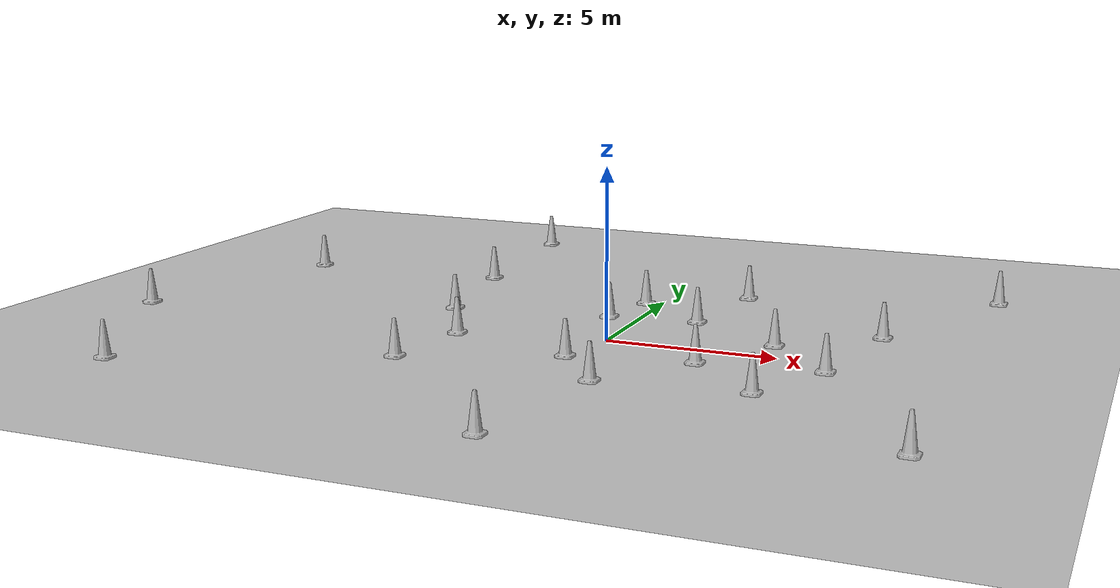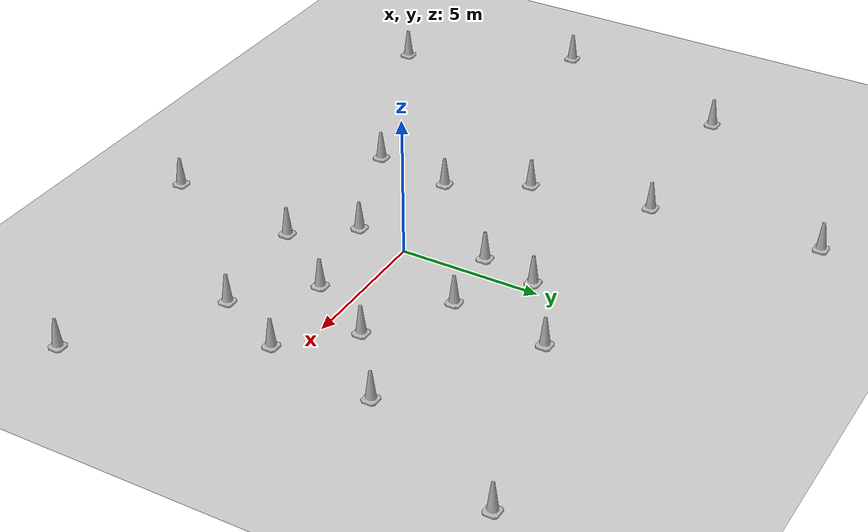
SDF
<sdf version="1.7">
 <world name="default">
  <light name="sun" type="directional">
   <cast_shadows>0</cast_shadows>
   <pose>0 0 10 0 -0 0</pose>
   <diffuse>0.8 0.8 0.8 1</diffuse>
   <specular>0.2 0.2 0.2 1</specular>
   <attenuation>
    <range>1000</range>
    <constant>0.9</constant>
    <linear>0.01</linear>
    <quadratic>0.001</quadratic>
   </attenuation>
   <direction>-0.5 0.1 -0.9</direction>
   <spot><inner_angle>0</inner_angle><outer_angle>0</outer_angle><falloff>0</falloff></spot>
  </light>
  <model name="ground_plane">
   <static>1</static>
   <link name="link">
    <collision name="collision">
     <geometry><plane><normal>0 0 1</normal><size>100 100</size></plane></geometry>
     <surface>
      <contact><collide_bitmask>65535</collide_bitmask></contact>
      <friction><ode><mu>100</mu><mu2>50</mu2></ode></friction>
     </surface>
    </collision>
    <visual name="visual">
     <cast_shadows>0</cast_shadows>
     <geometry><plane><normal>0 0 1</normal><size>100 100</size></plane></geometry>
     <material>
      <script><uri>file://media/materials/scripts/gazebo.material</uri><name>Gazebo/Grey</name></script>
     </material>
    </visual>
   </link>
  </model>
  <scene><ambient>0 0 0 1</ambient><shadows>0</shadows><background>0.7 0.7 0.7 1</background></scene>
  <gravity>0 0 -9.8</gravity>
  <magnetic_field>6e-06 2.3e-05 -4.2e-05</magnetic_field>
  <atmosphere type="adiabatic"/>
  <physics type="ode">
   <max_step_size>0.001</max_step_size>
   <real_time_factor>1</real_time_factor>
   <real_time_update_rate>1000</real_time_update_rate>
  </physics>
  <spherical_coordinates>
   <surface_model>EARTH_WGS84</surface_model>
   <latitude_deg>0</latitude_deg>
   <longitude_deg>0</longitude_deg>
   <elevation>0</elevation>
   <heading_deg>0</heading_deg>
  </spherical_coordinates>
  <model name="Construction Cone">
   <link name="link">
    <collision name="collision">
     <geometry>
      <mesh><scale>10 10 10</scale><uri>model://construction_cone/meshes/construction_cone.dae</uri></mesh>
     </geometry>
    </collision>
    <visual name="visual">
     <geometry>
      <mesh><scale>10 10 10</scale><uri>model://construction_cone/meshes/construction_cone.dae</uri></mesh>
     </geometry>
    </visual>
    <inertial>
     <inertia><ixx>1</ixx><ixy>0</ixy><ixz>0</ixz><iyy>1</iyy><iyz>0</iyz><izz>1</izz></inertia>
     <mass>1</mass>
    </inertial>
   </link>
   <pose>-0.920411 2.56777 -0 0 -0 0</pose>
  </model>
  <model name="Construction Cone_0">
   <link name="link">
    <collision name="collision">
     <geometry>
      <mesh><scale>10 10 10</scale><uri>model://construction_cone/meshes/construction_cone.dae</uri></mesh>
     </geometry>
    </collision>
    <visual name="visual">
     <geometry>
      <mesh><scale>10 10 10</scale><uri>model://construction_cone/meshes/construction_cone.dae</uri></mesh>
     </geometry>
    </visual>
    <inertial>
     <inertia><ixx>1</ixx><ixy>0</ixy><ixz>0</ixz><iyy>1</iyy><iyz>0</iyz><izz>1</izz></inertia>
     <mass>1</mass>
    </inertial>
   </link>
   <pose>-0.4728 4.59652 -1e-05 -0 -0 -0</pose>
  </model>
  <model name="Construction Cone_clone">
   <link name="link">
    <collision name="collision">
     <geometry>
      <mesh><scale>10 10 10</scale><uri>model://construction_cone/meshes/construction_cone.dae</uri></mesh>
     </geometry>
    </collision>
    <visual name="visual">
     <geometry>
      <mesh><scale>10 10 10</scale><uri>model://construction_cone/meshes/construction_cone.dae</uri></mesh>
     </geometry>
    </visual>
    <inertial>
     <inertia><ixx>1</ixx><ixy>0</ixy><ixz>0</ixz><iyy>1</iyy><iyz>0</iyz><izz>1</izz></inertia>
     <mass>1</mass>
    </inertial>
   </link>
   <pose>1.75948 2.9227 -1e-05 -0 -0 -0</pose>
  </model>
  <model name="Construction Cone_clone_0">
   <link name="link">
    <collision name="collision">
     <geometry>
      <mesh><scale>10 10 10</scale><uri>model://construction_cone/meshes/construction_cone.dae</uri></mesh>
     </geometry>
    </collision>
    <visual name="visual">
     <geometry>
      <mesh><scale>10 10 10</scale><uri>model://construction_cone/meshes/construction_cone.dae</uri></mesh>
     </geometry>
    </visual>
    <inertial>
     <inertia><ixx>1</ixx><ixy>0</ixy><ixz>0</ixz><iyy>1</iyy><iyz>0</iyz><izz>1</izz></inertia>
     <mass>1</mass>
    </inertial>
   </link>
   <pose>4.60314 1.20526 -8e-06 0 1e-06 0</pose>
  </model>
  <model name="Construction Cone_clone_1">
   <link name="link">
    <collision name="collision">
     <geometry>
      <mesh><scale>10 10 10</scale><uri>model://construction_cone/meshes/construction_cone.dae</uri></mesh>
     </geometry>
    </collision>
    <visual name="visual">
     <geometry>
      <mesh><scale>10 10 10</scale><uri>model://construction_cone/meshes/construction_cone.dae</uri></mesh>
     </geometry>
    </visual>
    <inertial>
     <inertia><ixx>1</ixx><ixy>0</ixy><ixz>0</ixz><iyy>1</iyy><iyz>0</iyz><izz>1</izz></inertia>
     <mass>1</mass>
    </inertial>
   </link>
   <pose>3.08774 -1.30902 -0 0 -0 0</pose>
  </model>
  <model name="Construction Cone_clone_2">
   <link name="link">
    <collision name="collision">
     <geometry>
      <mesh><scale>10 10 10</scale><uri>model://construction_cone/meshes/construction_cone.dae</uri></mesh>
     </geometry>
    </collision>
    <visual name="visual">
     <geometry>
      <mesh><scale>10 10 10</scale><uri>model://construction_cone/meshes/construction_cone.dae</uri></mesh>
     </geometry>
    </visual>
    <inertial>
     <inertia><ixx>1</ixx><ixy>0</ixy><ixz>0</ixz><iyy>1</iyy><iyz>0</iyz><izz>1</izz></inertia>
     <mass>1</mass>
    </inertial>
   </link>
   <pose>-0.420886 -2.01359 -0 0 -0 0</pose>
  </model>
  <model name="Construction Cone_clone_3">
   <link name="link">
    <collision name="collision">
     <geometry>
      <mesh><scale>10 10 10</scale><uri>model://construction_cone/meshes/construction_cone.dae</uri></mesh>
     </geometry>
    </collision>
    <visual name="visual">
     <geometry>
      <mesh><scale>10 10 10</scale><uri>model://construction_cone/meshes/construction_cone.dae</uri></mesh>
     </geometry>
    </visual>
    <inertial>
     <inertia><ixx>1</ixx><ixy>0</ixy><ixz>0</ixz><iyy>1</iyy><iyz>0</iyz><izz>1</izz></inertia>
     <mass>1</mass>
    </inertial>
   </link>
   <pose>6.55555 -0.848441 -0 0 -0 0</pose>
  </model>
  <model name="Construction Cone_clone_4">
   <link name="link">
    <collision name="collision">
     <geometry>
      <mesh><scale>10 10 10</scale><uri>model://construction_cone/meshes/construction_cone.dae</uri></mesh>
     </geometry>
    </collision>
    <visual name="visual">
     <geometry>
      <mesh><scale>10 10 10</scale><uri>model://construction_cone/meshes/construction_cone.dae</uri></mesh>
     </geometry>
    </visual>
    <inertial>
     <inertia><ixx>1</ixx><ixy>0</ixy><ixz>0</ixz><iyy>1</iyy><iyz>0</iyz><izz>1</izz></inertia>
     <mass>1</mass>
    </inertial>
   </link>
   <pose>-4.29756 -0.912986 -0 0 -0 0</pose>
  </model>
  <model name="Construction Cone_clone_5">
   <link name="link">
    <collision name="collision">
     <geometry>
      <mesh><scale>10 10 10</scale><uri>model://construction_cone/meshes/construction_cone.dae</uri></mesh>
     </geometry>
    </collision>
    <visual name="visual">
     <geometry>
      <mesh><scale>10 10 10</scale><uri>model://construction_cone/meshes/construction_cone.dae</uri></mesh>
     </geometry>
    </visual>
    <inertial>
     <inertia><ixx>1</ixx><ixy>0</ixy><ixz>0</ixz><iyy>1</iyy><iyz>0</iyz><izz>1</izz></inertia>
     <mass>1</mass>
    </inertial>
   </link>
   <pose>-5.73405 1.75984 -0 0 -0 0</pose>
  </model>
  <model name="Construction Cone_clone_6">
   <link name="link">
    <collision name="collision">
     <geometry>
      <mesh><scale>10 10 10</scale><uri>model://construction_cone/meshes/construction_cone.dae</uri></mesh>
     </geometry>
    </collision>
    <visual name="visual">
     <geometry>
      <mesh><scale>10 10 10</scale><uri>model://construction_cone/meshes/construction_cone.dae</uri></mesh>
     </geometry>
    </visual>
    <inertial>
     <inertia><ixx>1</ixx><ixy>0</ixy><ixz>0</ixz><iyy>1</iyy><iyz>0</iyz><izz>1</izz></inertia>
     <mass>1</mass>
    </inertial>
   </link>
   <pose>-6.44956 6.04392 -1e-05 0 -0 0</pose>
  </model>
  <model name="Construction Cone_clone_7">
   <link name="link">
    <collision name="collision">
     <geometry>
      <mesh><scale>10 10 10</scale><uri>model://construction_cone/meshes/construction_cone.dae</uri></mesh>
     </geometry>
    </collision>
    <visual name="visual">
     <geometry>
      <mesh><scale>10 10 10</scale><uri>model://construction_cone/meshes/construction_cone.dae</uri></mesh>
     </geometry>
    </visual>
    <inertial>
     <inertia><ixx>1</ixx><ixy>0</ixy><ixz>0</ixz><iyy>1</iyy><iyz>0</iyz><izz>1</izz></inertia>
     <mass>1</mass>
    </inertial>
   </link>
   <pose>-4.74671 -3.80397 -0 0 -0 0</pose>
  </model>
  <model name="Construction Cone_clone_8">
   <link name="link">
    <collision name="collision">
     <geometry>
      <mesh><scale>10 10 10</scale><uri>model://construction_cone/meshes/construction_cone.dae</uri></mesh>
     </geometry>
    </collision>
    <visual name="visual">
     <geometry>
      <mesh><scale>10 10 10</scale><uri>model://construction_cone/meshes/construction_cone.dae</uri></mesh>
     </geometry>
    </visual>
    <inertial>
     <inertia><ixx>1</ixx><ixy>0</ixy><ixz>0</ixz><iyy>1</iyy><iyz>0</iyz><izz>1</izz></inertia>
     <mass>1</mass>
    </inertial>
   </link>
   <pose>1.08289 -3.94407 -0 0 -0 0</pose>
  </model>
  <model name="Construction Cone_clone_9">
   <link name="link">
    <collision name="collision">
     <geometry>
      <mesh><scale>10 10 10</scale><uri>model://construction_cone/meshes/construction_cone.dae</uri></mesh>
     </geometry>
    </collision>
    <visual name="visual">
     <geometry>
      <mesh><scale>10 10 10</scale><uri>model://construction_cone/meshes/construction_cone.dae</uri></mesh>
     </geometry>
    </visual>
    <inertial>
     <inertia><ixx>1</ixx><ixy>0</ixy><ixz>0</ixz><iyy>1</iyy><iyz>0</iyz><izz>1</izz></inertia>
     <mass>1</mass>
    </inertial>
   </link>
   <pose>5.28494 -3.40801 -0 0 -0 0</pose>
  </model>
  <model name="Construction Cone_clone_10">
   <link name="link">
    <collision name="collision">
     <geometry>
      <mesh><scale>10 10 10</scale><uri>model://construction_cone/meshes/construction_cone.dae</uri></mesh>
     </geometry>
    </collision>
    <visual name="visual">
     <geometry>
      <mesh><scale>10 10 10</scale><uri>model://construction_cone/meshes/construction_cone.dae</uri></mesh>
     </geometry>
    </visual>
    <inertial>
     <inertia><ixx>1</ixx><ixy>0</ixy><ixz>0</ixz><iyy>1</iyy><iyz>0</iyz><izz>1</izz></inertia>
     <mass>1</mass>
    </inertial>
   </link>
   <pose>2.32276 6.46867 -0 0 -0 0</pose>
  </model>
  <model name="Construction Cone_clone_11">
   <link name="link">
    <collision name="collision">
     <geometry>
      <mesh><scale>10 10 10</scale><uri>model://construction_cone/meshes/construction_cone.dae</uri></mesh>
     </geometry>
    </collision>
    <visual name="visual">
     <geometry>
      <mesh><scale>10 10 10</scale><uri>model://construction_cone/meshes/construction_cone.dae</uri></mesh>
     </geometry>
    </visual>
    <inertial>
     <inertia><ixx>1</ixx><ixy>0</ixy><ixz>0</ixz><iyy>1</iyy><iyz>0</iyz><izz>1</izz></inertia>
     <mass>1</mass>
    </inertial>
   </link>
   <pose>7.25131 3.21074 -0 0 -0 0</pose>
  </model>
  <model name="Construction Cone_clone_12">
   <link name="link">
    <collision name="collision">
     <geometry>
      <mesh><scale>10 10 10</scale><uri>model://construction_cone/meshes/construction_cone.dae</uri></mesh>
     </geometry>
    </collision>
    <visual name="visual">
     <geometry>
      <mesh><scale>10 10 10</scale><uri>model://construction_cone/meshes/construction_cone.dae</uri></mesh>
     </geometry>
    </visual>
    <inertial>
     <inertia><ixx>1</ixx><ixy>0</ixy><ixz>0</ixz><iyy>1</iyy><iyz>0</iyz><izz>1</izz></inertia>
     <mass>1</mass>
    </inertial>
   </link>
   <pose>9.76762 8.70626 -0 0 -1e-06 0</pose>
  </model>
  <model name="Construction Cone_clone_13">
   <link name="link">
    <collision name="collision">
     <geometry>
      <mesh><scale>10 10 10</scale><uri>model://construction_cone/meshes/construction_cone.dae</uri></mesh>
     </geometry>
    </collision>
    <visual name="visual">
     <geometry>
      <mesh><scale>10 10 10</scale><uri>model://construction_cone/meshes/construction_cone.dae</uri></mesh>
     </geometry>
    </visual>
    <inertial>
     <inertia><ixx>1</ixx><ixy>0</ixy><ixz>0</ixz><iyy>1</iyy><iyz>0</iyz><izz>1</izz></inertia>
     <mass>1</mass>
    </inertial>
   </link>
   <pose>-12.8379 5.62485 -0 0 -1e-06 0</pose>
  </model>
  <model name="Construction Cone_clone_14">
   <link name="link">
    <collision name="collision">
     <geometry>
      <mesh><scale>10 10 10</scale><uri>model://construction_cone/meshes/construction_cone.dae</uri></mesh>
     </geometry>
    </collision>
    <visual name="visual">
     <geometry>
      <mesh><scale>10 10 10</scale><uri>model://construction_cone/meshes/construction_cone.dae</uri></mesh>
     </geometry>
    </visual>
    <inertial>
     <inertia><ixx>1</ixx><ixy>0</ixy><ixz>0</ixz><iyy>1</iyy><iyz>0</iyz><izz>1</izz></inertia>
     <mass>1</mass>
    </inertial>
   </link>
   <pose>-14.9218 -1.21362 -0 0 -1e-06 0</pose>
  </model>
  <model name="Construction Cone_clone_15">
   <link name="link">
    <collision name="collision">
     <geometry>
      <mesh><scale>10 10 10</scale><uri>model://construction_cone/meshes/construction_cone.dae</uri></mesh>
     </geometry>
    </collision>
    <visual name="visual">
     <geometry>
      <mesh><scale>10 10 10</scale><uri>model://construction_cone/meshes/construction_cone.dae</uri></mesh>
     </geometry>
    </visual>
    <inertial>
     <inertia><ixx>1</ixx><ixy>0</ixy><ixz>0</ixz><iyy>1</iyy><iyz>0</iyz><izz>1</izz></inertia>
     <mass>1</mass>
    </inertial>
   </link>
   <pose>0.276435 -8.98364 -0 0 -0 0</pose>
  </model>
  <model name="Construction Cone_clone_16">
   <link name="link">
    <collision name="collision">
     <geometry>
      <mesh><scale>10 10 10</scale><uri>model://construction_cone/meshes/construction_cone.dae</uri></mesh>
     </geometry>
    </collision>
    <visual name="visual">
     <geometry>
      <mesh><scale>10 10 10</scale><uri>model://construction_cone/meshes/construction_cone.dae</uri></mesh>
     </geometry>
    </visual>
    <inertial>
     <inertia><ixx>1</ixx><ixy>0</ixy><ixz>0</ixz><iyy>1</iyy><iyz>0</iyz><izz>1</izz></inertia>
     <mass>1</mass>
    </inertial>
   </link>
   <pose>-12 -7 -0 0 -1e-06 0</pose>
  </model>
  <model name="Construction Cone_clone_17">
   <link name="link">
    <collision name="collision">
     <geometry>
      <mesh><scale>10 10 10</scale><uri>model://construction_cone/meshes/construction_cone.dae</uri></mesh>
     </geometry>
    </collision>
    <visual name="visual">
     <geometry>
      <mesh><scale>10 10 10</scale><uri>model://construction_cone/meshes/construction_cone.dae</uri></mesh>
     </geometry>
    </visual>
    <inertial>
     <inertia><ixx>1</ixx><ixy>0</ixy><ixz>0</ixz><iyy>1</iyy><iyz>0</iyz><izz>1</izz></inertia>
     <mass>1</mass>
    </inertial>
   </link>
   <pose>9.83052 -6.5704 -0 0 -0 0</pose>
  </model>
  <model name="Construction Cone_clone_18">
   <link name="link">
    <collision name="collision">
     <geometry>
      <mesh><scale>10 10 10</scale><uri>model://construction_cone/meshes/construction_cone.dae</uri></mesh>
     </geometry>
    </collision>
    <visual name="visual">
     <geometry>
      <mesh><scale>10 10 10</scale><uri>model://construction_cone/meshes/construction_cone.dae</uri></mesh>
     </geometry>
    </visual>
    <inertial>
     <inertia><ixx>1</ixx><ixy>0</ixy><ixz>0</ixz><iyy>1</iyy><iyz>0</iyz><izz>1</izz></inertia>
     <mass>1</mass>
    </inertial>
   </link>
   <pose>-6.95597 12.0331 -0 0 -1e-06 0</pose>
  </model>
 </world>
</sdf>
